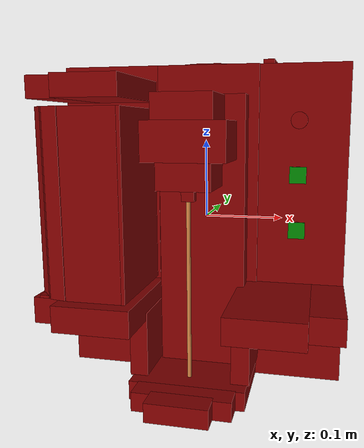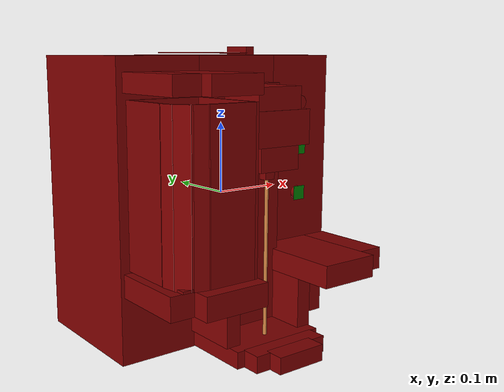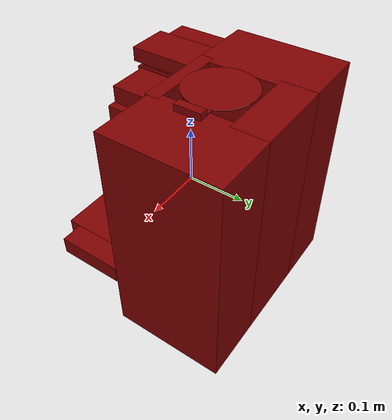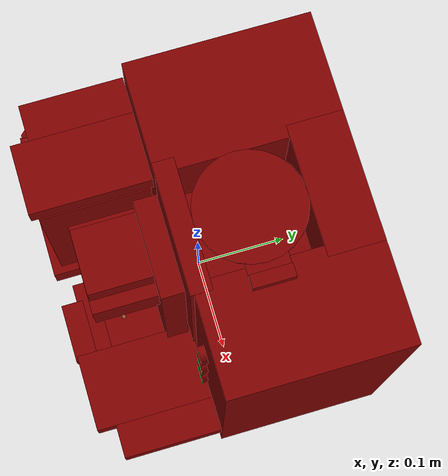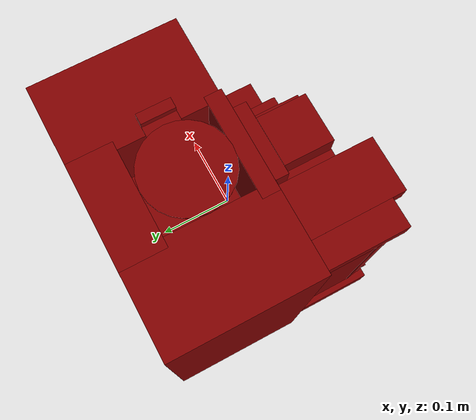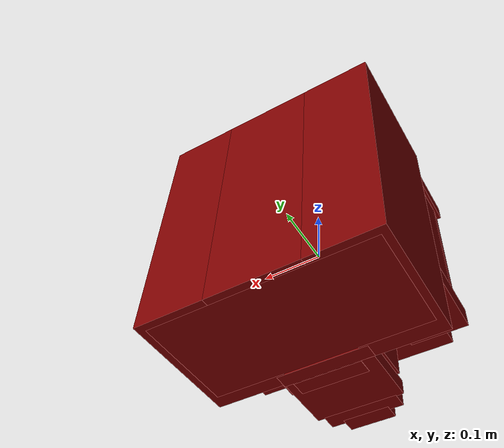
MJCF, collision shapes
<?xml version='1.0' encoding='UTF-8'?>
<mujoco model="model">
  <option timestep="0.002" gravity="0.0 0.0 -9.81"/>
  <compiler angle="radian"/>
  <asset>
    <mesh file="visuals/Body001.obj" name="Body001_vis"/>
    <mesh file="visuals/Button001.obj" name="Button001_vis"/>
    <mesh file="visuals/Button002.obj" name="Button002_vis"/>
    <mesh file="visuals/Button003.obj" name="Button003_vis"/>
    <mesh file="visuals/Container001_Clear.obj" name="Container001_Clear_vis"/>
    <mesh file="visuals/Lid001.obj" name="Lid001_vis"/>
    <mesh file="visuals/Lid002.obj" name="Lid002_vis"/>
    <texture file="visuals/T_BC001.png" name="Body001_material" type="2d"/>
    <material name="Body001_material" rgba="1 1 1 1.0" texture="Body001_material" shininess="0.1" specular="5"/>
    <texture file="visuals/T_BC001.png" name="Button001_material" type="2d"/>
    <material name="Button001_material" rgba="1 1 1 1.0" texture="Button001_material" shininess="0.1" specular="5"/>
    <texture file="visuals/T_BC001.png" name="Button002_material" type="2d"/>
    <material name="Button002_material" rgba="1 1 1 1.0" texture="Button002_material" shininess="0.1" specular="5"/>
    <texture file="visuals/T_BC001.png" name="Button003_material" type="2d"/>
    <material name="Button003_material" rgba="1 1 1 1.0" texture="Button003_material" shininess="0.1" specular="5"/>
    <texture file="visuals/T_BC001.png" name="Container001_Clear_material" type="2d"/>
    <material name="Container001_Clear_material" rgba="1 1 1 0.054901957511901855" texture="Container001_Clear_material" shininess="0.5" specular="0.3103448502657381"/>
    <texture file="visuals/T_BC001.png" name="Lid001_material" type="2d"/>
    <material name="Lid001_material" rgba="1 1 1 1.0" texture="Lid001_material" shininess="0.1" specular="5"/>
    <texture file="visuals/T_BC001.png" name="Lid002_material" type="2d"/>
    <material name="Lid002_material" rgba="1 1 1 1.0" texture="Lid002_material" shininess="0.1" specular="5"/>
  </asset>
  <default>
    <default class="visual">
      <geom conaffinity="0" contype="0" group="1" type="mesh"/>
    </default>
    <default class="collision">
      <geom group="0" rgba="0.5 0 0 0.5"/>
    </default>
    <default class="spawn">
      <geom group="0" rgba="1 1 1 0.5" contype="0" conaffinity="0"/>
      <site group="0" rgba="1 1 1 0.5"/>
    </default>
    <default class="region">
      <geom group="1" conaffinity="0" contype="0" rgba="0 1 0 0"/>
    </default>
  </default>
  <worldbody>
    <body>
      <body name="object">
        <geom class="collision" type="box" pos="0.12107712775468826 -0.03348321467638016 -0.00964126642793417" size="0.010198851116001606 0.00022172460739966482 0.010198851116001606" quat="1.0 0.0 0.0 0.0" name="start_button_2" rgba="0.0 0.5 0 0.5"/>
        <geom class="collision" type="box" pos="0.12107712775468826 -0.03348321467638016 0.0590573288500309" size="0.010198851116001606 0.00022172460739966482 0.010198851116001606" quat="1.0 0.0 0.0 0.0" name="start_button_1" rgba="0.0 0.5 0 0.5"/>
        <geom mesh="Body001_vis" type="mesh" solimp="0.998 0.998 0.001" solref="0.001 1" friction="0.95 0.3 0.1" class="visual" material="Body001_material"/>
        <geom class="collision" type="box" pos="0.12029457092285156 0.07537875324487686 -0.007508434820920229" size="0.06045505404472351 0.09921623766422272 0.20035035908222198" quat="1.0 0.0 0.0 0.0"/>
        <geom class="collision" type="box" pos="0.005726244300603867 -0.04299698397517204 -0.025446901097893715" size="0.053413648158311844 0.012728841975331306 0.1813308745622635" quat="1.0 0.0 0.0 0.0"/>
        <geom class="collision" type="box" pos="0.0002868058509193361 -0.09176564961671829 0.10149337351322174" size="0.048631131649017334 0.03552297130227089 0.02312675304710865" quat="1.0 0.0 0.0 0.0"/>
        <geom class="collision" type="box" pos="0.09653265029191971 -0.0949341431260109 -0.09565312415361404" size="0.045368023216724396 0.06947191059589386 0.01577002741396427" quat="1.0 0.0 0.0 0.0"/>
        <geom class="collision" type="box" pos="0.0020698849111795425 -0.076214499771595 -0.1945330798625946" size="0.06997708231210709 0.05075030028820038 0.011579030193388462" quat="1.0 0.0 0.0 0.0"/>
        <geom class="collision" type="box" pos="0.0008118483237922192 -0.09994778037071228 0.04015955701470375" size="0.0076132952235639095 0.005790456663817167 0.007272169925272465" quat="1.0 0.0 0.0 0.0"/>
        <geom class="collision" type="box" pos="-0.06084932491183281 -0.06735557317733765 -0.14354677498340607" size="0.01099257269501686 0.04189159721136093 0.0399370975792408" quat="1.0 0.0 0.0 0.0"/>
        <geom class="collision" type="box" pos="0.06346086007356644 -0.06735557317733765 -0.14354677498340607" size="0.0109926006346941 0.041891708970069885 0.03993720933794975" quat="1.0 0.0 0.0 0.0"/>
        <geom class="collision" type="box" pos="-2.947444772871677e-05 0.0806526467204094 -0.05731666460633278" size="0.16951733827590942 0.08244263380765915 0.15054689347743988" quat="1.0 0.0 0.0 0.0"/>
        <geom class="collision" type="box" pos="-0.11887158453464508 0.073183074593544 -0.007508434820920229" size="0.06208264082670212 0.10141336172819138 0.2003532350063324" quat="1.0 0.0 0.0 0.0"/>
        <geom class="collision" type="box" pos="0.0008508339524269104 -0.01621164381504059 -0.007508434820920229" size="0.07093626260757446 0.01183249056339264 0.2003535032272339" quat="1.0 0.0 0.0 0.0"/>
        <geom class="collision" type="box" pos="0.0008508339524269104 0.14423009753227234 -0.007508434820920229" size="0.07093634456396103 0.030368497595191002 0.20035377144813538" quat="1.0 0.0 0.0 0.0"/>
        <geom class="collision" type="box" pos="-0.09780696034431458 -0.09920985251665115 -0.09715201705694199" size="0.04656730592250824 0.0660557672381401 0.015917019918560982" quat="1.0 0.0 0.0 0.0"/>
        <geom class="collision" type="box" pos="-0.13211330771446228 -0.08683750033378601 -0.09715201705694199" size="0.046567466109991074 0.0536835752427578 0.015917060896754265" quat="1.0 0.0 0.0 0.0"/>
        <geom class="collision" type="box" pos="-0.0008297350141219795 -0.09112764894962311 0.13890305161476135" size="0.035167086869478226 0.03488760069012642 0.015688082203269005" quat="1.0 0.0 0.0 0.0"/>
        <geom class="collision" type="box" pos="0.0002868058509193361 -0.09090162813663483 0.06340806931257248" size="0.03158532828092575 0.03466152027249336 0.01670834794640541" quat="1.0 0.0 0.0 0.0"/>
        <geom class="collision" type="box" pos="0.1614852100610733 -0.08361555635929108 -0.09565312415361404" size="0.019854122772812843 0.05838443711400032 0.01577002741396427" quat="1.0 0.0 0.0 0.0"/>
        <geom class="collision" type="box" pos="0.0024135117419064045 -0.13847100734710693 -0.1945330798625946" size="0.05875967815518379 0.013698587194085121 0.011579306796193123" quat="1.0 0.0 0.0 0.0"/>
        <geom class="collision" type="box" pos="0.0024135117419064045 -0.15859687328338623 -0.1945330798625946" size="0.03685906156897545 0.013698773458600044 0.01157949399203062" quat="1.0 0.0 0.0 0.0"/>
        <body name="Button001">
          <joint axis="0.0 1.0 0.0" pos="0.1211571916937828 -0.02952328324317932 0.12493383139371872" limited="true" name="Button001_joint" range="0.0 0.003" type="slide" damping="1" frictionloss="1" armature=".01" stiffness="0.05"/>
          <geom mesh="Button001_vis" type="mesh" solimp="0.998 0.998 0.001" solref="0.001 1" friction="0.95 0.3 0.1" class="visual" material="Button001_material"/>
          <geom class="collision" type="cylinder" pos="0.12114007771015167 -0.03022019751369953 0.12497112900018692" size="0.010191845707595348 0.00350280967541039" quat="0.7071067094802856 0.7071068286895752 0.0 0.0"/>
        </body>
        <body name="Button002">
          <joint axis="0.0 1.0 0.0" pos="0.1211571916937828 -0.02952328510582447 0.059010542929172516" limited="true" name="Button002_joint" range="0.0 0.003" type="slide" damping="1" frictionloss="1" armature=".01" stiffness="0.05"/>
          <geom mesh="Button002_vis" type="mesh" solimp="0.998 0.998 0.001" solref="0.001 1" friction="0.95 0.3 0.1" class="visual" material="Button002_material"/>
          <geom class="collision" type="cylinder" pos="0.12114007771015167 -0.029870806261897087 0.05897688493132591" size="0.010191845707595348 0.0031534216832369566" quat="0.7071067094802856 0.7071068286895752 0.0 0.0"/>
        </body>
        <body name="Button003">
          <joint axis="0.0 1.0 0.0" pos="0.1211571916937828 -0.02952328510582447 -0.009814940392971039" limited="true" name="Button003_joint" range="0.0 0.003" type="slide" damping="1" frictionloss="1" armature=".01" stiffness="0.05"/>
          <geom mesh="Button003_vis" type="mesh" solimp="0.998 0.998 0.001" solref="0.001 1" friction="0.95 0.3 0.1" class="visual" material="Button003_material"/>
          <geom class="collision" type="cylinder" pos="0.12114007771015167 -0.029870804399251938 -0.009826495312154293" size="0.010191845707595348 0.0031534216832369566" quat="0.7071067094802856 0.7071068286895752 0.0 0.0"/>
        </body>
        <body name="Container001_Clear">
          <geom mesh="Container001_Clear_vis" type="mesh" solimp="0.998 0.998 0.001" solref="0.001 1" friction="0.95 0.3 0.1" class="visual" material="Container001_Clear_material"/>
          <geom class="collision" type="box" pos="-0.06172924488782883 -0.0934126153588295 0.03038056567311287" size="0.002330993302166462 0.06031223386526108 0.10899824649095535" quat="1.0 0.0 0.0 0.0"/>
          <geom class="collision" type="box" pos="-0.16815856099128723 -0.07151781022548676 0.03038056567311287" size="0.002330995397642255 0.038417741656303406 0.1089983806014061" quat="1.0 0.0 0.0 0.0"/>
          <geom class="collision" type="box" pos="-0.11487181484699249 -0.034923311322927475 0.03038056567311287" size="0.05122653394937515 0.0018234745366498828 0.10899851471185684" quat="1.0 0.0 0.0 0.0"/>
          <geom class="collision" type="box" pos="-0.11487181484699249 -0.09250906109809875 -0.07697013765573502" size="0.051226601004600525 0.055577732622623444 0.001648658188059926" quat="1.0 0.0 0.0 0.0"/>
          <geom class="collision" type="box" pos="-0.09726162254810333 -0.15078578889369965 0.03038056567311287" size="0.03361662104725838 0.003035307861864567 0.10899879038333893" quat="1.0 0.0 0.0 0.0"/>
          <geom class="collision" type="box" pos="-0.15843868255615234 -0.13845527172088623 0.03038056567311287" size="0.010501855053007603 0.0038254433311522007 0.1089988723397255" quat="0.917453408241272 0.0 -0.0 -0.39784330129623413"/>
          <geom class="collision" type="box" pos="-0.1412748247385025 -0.14889830350875854 0.03038056567311287" size="0.00981372594833374 0.0030353106558322906 0.1089988723397255" quat="0.9960724711418152 0.0 -0.0 -0.08854161202907562"/>
          <geom class="collision" type="box" pos="-0.16714005172252655 -0.12125612050294876 0.03038056567311287" size="0.0023310009855777025 0.009876438416540623 0.10899871587753296" quat="0.9964740872383118 0.0 0.0 0.08390132337808609"/>
          <body name="Lid001">
            <geom mesh="Lid001_vis" type="mesh" solimp="0.998 0.998 0.001" solref="0.001 1" friction="0.95 0.3 0.1" class="visual" material="Lid001_material"/>
            <geom class="collision" type="box" pos="-0.15381473302841187 -0.08604062348604202 0.16047435998916626" size="0.019733630120754242 0.055769845843315125 0.012744789011776447" quat="1.0 0.0 0.0 0.0"/>
            <geom class="collision" type="box" pos="-0.0962858498096466 -0.09560143947601318 0.16047435998916626" size="0.03779304027557373 0.06533174216747284 0.012745059095323086" quat="1.0 0.0 0.0 0.0"/>
          </body>
        </body>
        <body name="Lid002">
          <joint axis="0.0 -1.0 0.0" pos="-0.05729377642273903 0.054574884474277496 0.19490844011306763" limited="true" name="Lid002_joint" range="0.0 1.5707963267948966" type="hinge" damping="1" frictionloss="1" armature=".01" stiffness="0.05"/>
          <geom mesh="Lid002_vis" type="mesh" solimp="0.998 0.998 0.001" solref="0.001 1" friction="0.95 0.3 0.1" class="visual" material="Lid002_material"/>
          <geom class="collision" type="cylinder" pos="0.0016390916425734758 0.05432489886879921 0.1960778385400772" size="0.059431422501802444 0.000645747350063175" quat="1.0 0.0 0.0 0.0"/>
          <geom class="collision" type="box" pos="0.07712210714817047 0.0545748770236969 0.1992361694574356" size="0.007213071454316378 0.022710369899868965 0.005678252317011356" quat="1.0 0.0 0.0 0.0"/>
          <geom class="collision" type="box" pos="0.06437212228775024 0.0545748770236969 0.19572880864143372" size="0.008381525985896587 0.022710369899868965 0.0008296298328787088" quat="1.0 0.0 0.0 0.0"/>
        </body>
        <site type="cylinder" rgba="0.8 0.5 0.25 1" size="0.002499897265806794 0.10969151556491852" pos="0.0004139021039009094 -0.09987720102071762 -0.0758737176656723" name="coffee_liquid"/>
        <site rgba="0 0 0 0" size="0.009999999776482582 0.009999999776482582" pos="-2.2351741790771484e-08 -0.12523781114816666 -0.18611593544483185" name="receptacle_place_site"/>
        <geom class="region" name="reg_main" type="box" pos="0.0 0.0 0.0" size="0.1819556484222412 0.175599289894104 0.20598394966125488"/>
      </body>
    </body>
  </worldbody>
  <actuator>
    <motor name="Button001_joint_actuator" joint="Button001_joint" gear="0.5"/>
    <motor name="Button002_joint_actuator" joint="Button002_joint" gear="0.5"/>
    <motor name="Button003_joint_actuator" joint="Button003_joint" gear="0.5"/>
    <motor name="Lid002_joint_actuator" joint="Lid002_joint" gear="10"/>
  </actuator>
</mujoco>
